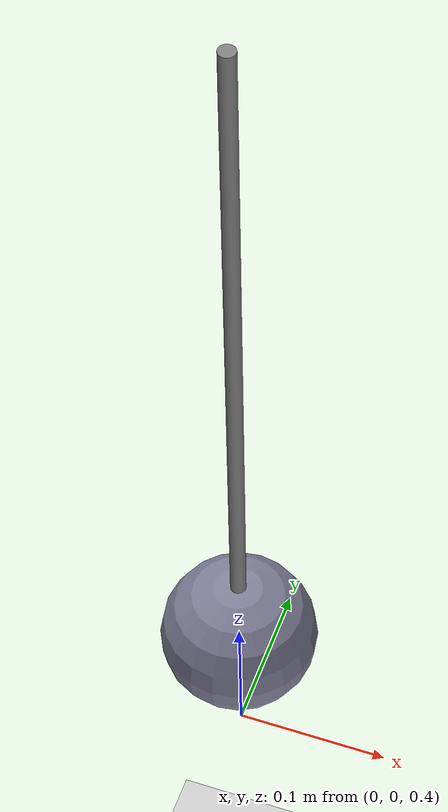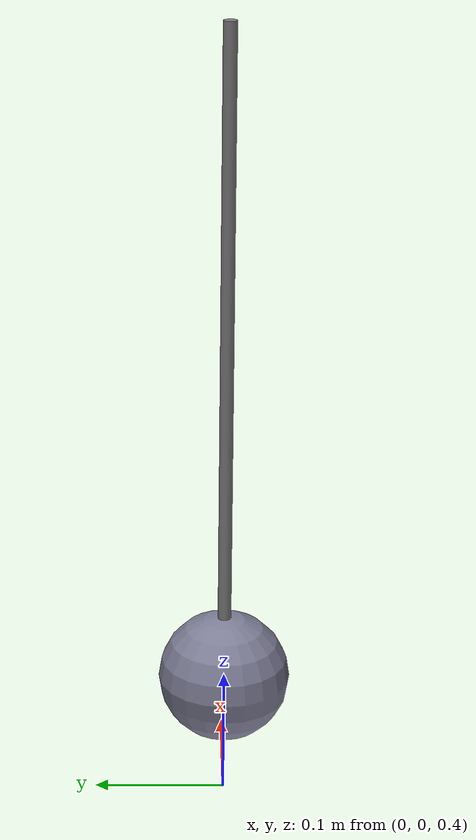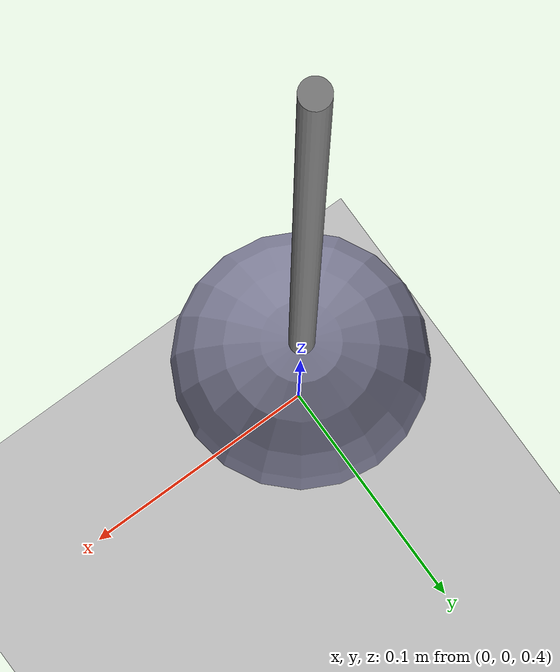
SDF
<?xml version="1.0"?>
<sdf version="1.6">
  <world name="default">
    <plugin name="gazebo_ros_state" filename="libgazebo_ros_state.so">
      <ros>
        <namespace>/demo</namespace>
        <argument>model_states:=model_states_demo</argument>
        <argument>link_states:=link_states_demo</argument>
      </ros>

      <update_rate>1.0</update_rate>
    </plugin>

    <include>
      <uri>model://ground_plane</uri>
    </include>
    <include>
      <uri>model://sun</uri>
    </include>

    <!-- Edit world gravity here -->
    <gravity>0.0 0.0 -9.81</gravity>

    <!-- Pendulum object -->
    <model name='pendulum_0' canonical_link='string'>
      <pose relative_to='world'>0.0 0.0 1.0 0.0 0.0 0.0</pose>

      <link name='string'>
        <pose relative_to='__model__'>0.0 0.0 -0.25 0.0 0.0 0.0</pose>

        <inertial>
          <mass>0.1</mass>
          <inertia>
            <ixx>0.002084</ixx>
            <ixy>0</ixy>
            <ixz>0</ixz>
            <iyy>0.002084</iyy>
            <iyz>0</iyz>
            <izz>0.000001</izz>
          </inertia>
        </inertial>

        <visual name='visual'>
          <geometry>
            <cylinder>
              <radius>0.005</radius>
              <length>0.5</length>
            </cylinder>
          </geometry>
          <material>
            <ambient>0.5 0.5 0.5 1</ambient>
            <diffuse>0.5 0.5 0.5 1</diffuse>
            <specular>0.5 0.5 0.5 1</specular>
          </material>
        </visual>

        <collision name='collision'>
          <geometry>
            <cylinder>
              <radius>0.005</radius>
              <length>0.5</length>
            </cylinder>
          </geometry>
        </collision>

      </link>

      <link name='weight'>
        <pose relative_to='string'>0.0 0.0 -0.25 0.0 0.0 0.0</pose>

        <inertial>
          <mass>1.0</mass>
          <inertia>
            <ixx>0.001000</ixx>
            <ixy>0</ixy>
            <ixz>0</ixz>
            <iyy>0.001000</iyy>
            <iyz>0</iyz>
            <izz>0.001000</izz>
          </inertia>
        </inertial>

        <visual name='visual'>
          <geometry>
            <sphere>
              <radius>0.05</radius>
            </sphere>
          </geometry>
          <material>
            <ambient>0.5 0.5 0.5 1</ambient>
            <diffuse>0.5 0.5 0.6 1</diffuse>
            <specular>0.5 0.5 1.0 1</specular>
          </material>
        </visual>

        <collision name='collision'>
          <geometry>
            <sphere>
              <radius>0.05</radius>
            </sphere>
          </geometry>
        </collision>

      </link>

      <joint name='world_string' type='revolute'>
        <parent>world</parent>
        <child>string</child>
        <pose>0.0 0.0 0.25 0.0 0.0 0.0</pose>
        <axis>
          <xyz>0 1 0</xyz>
        </axis>
      </joint>

      <joint name='string_weight' type='fixed'>
        <parent>string</parent>
        <child>weight</child>
        <pose>0.0 0.0 0.0 0.0 0.0 0.0</pose>
      </joint>

    </model>

  </world>
</sdf>
